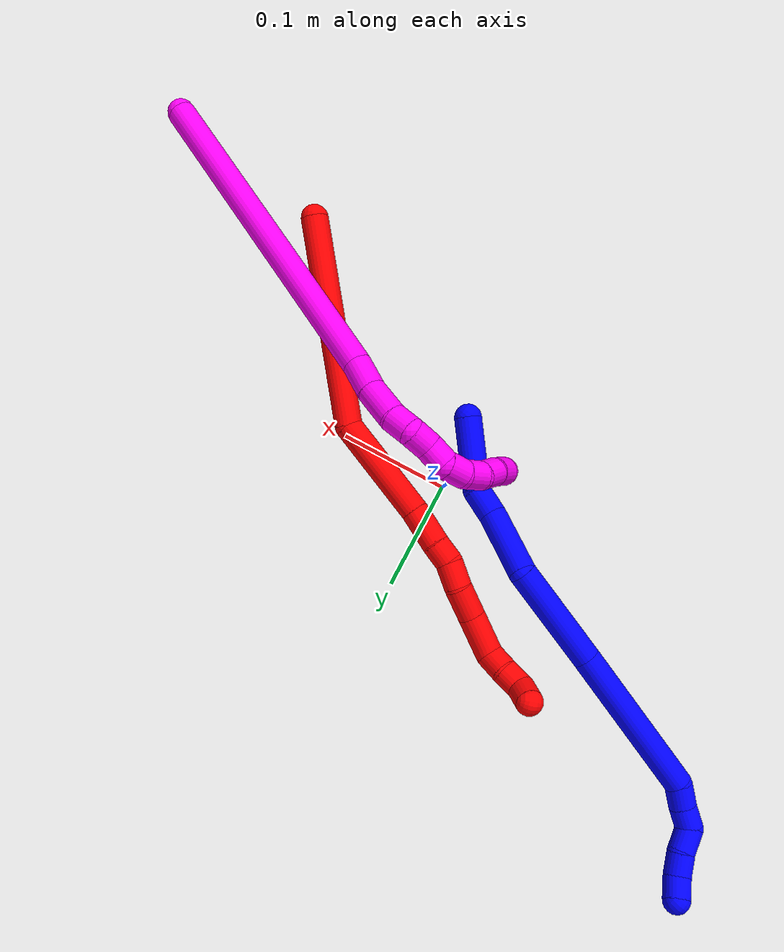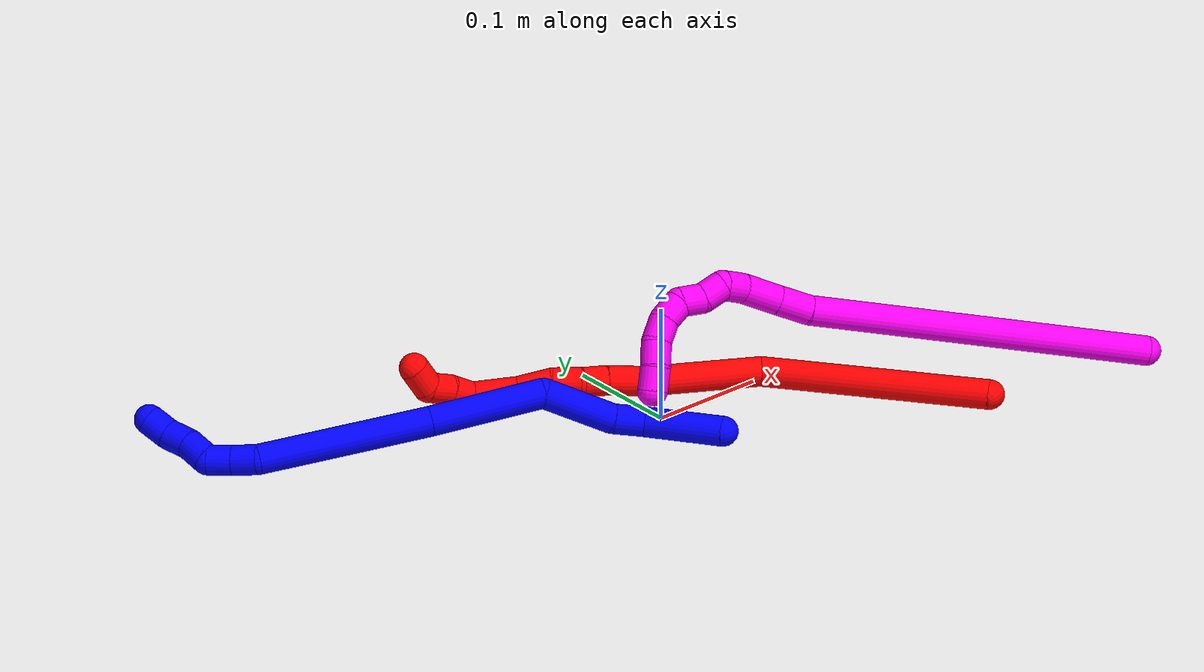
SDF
<sdf version="1.7">
 <world name="default">
  <model name="1">
   <static>0</static>
   <link name="1">
    <collision name="collision-cylinder-e_1_1_4">
     <pose>-0.022532 0.003399 0.024227 -0.139371 -0.744287 0.054476</pose>
     <geometry><cylinder><radius>0.0125</radius><length>0.066519</length></cylinder></geometry>
     <surface>
      <friction><ode><mu>1.16</mu><mu2>1.16</mu2><slip1>0</slip1><slip2>0</slip2></ode></friction>
      <contact><ode><kp>1e+06</kp><kd>1</kd><max_vel>0</max_vel><min_depth>0.001</min_depth></ode></contact>
     </surface>
    </collision>
    <visual name="visual-cylinder-e_1_1_4">
     <pose>-0.022532 0.003399 0.024227 -0.139371 -0.744287 0.054476</pose>
     <geometry><cylinder><radius>0.0125</radius><length>0.066519</length></cylinder></geometry>
     <material><ambient>0 0 1 1</ambient></material>
    </visual>
    <collision name="collision-cylinder-e_2_4_5">
     <pose>-0.048706 0.010806 0.060787 -0.31429 -0.273842 0.043657</pose>
     <geometry><cylinder><radius>0.0125</radius><length>0.026939</length></cylinder></geometry>
     <surface>
      <friction><ode><mu>1.16</mu><mu2>1.16</mu2><slip1>0</slip1><slip2>0</slip2></ode></friction>
      <contact><ode><kp>1e+06</kp><kd>1</kd><max_vel>0</max_vel><min_depth>0.001</min_depth></ode></contact>
     </surface>
    </collision>
    <visual name="visual-cylinder-e_2_4_5">
     <pose>-0.048706 0.010806 0.060787 -0.31429 -0.273842 0.043657</pose>
     <geometry><cylinder><radius>0.0125</radius><length>0.026939</length></cylinder></geometry>
     <material><ambient>0 0 1 1</ambient></material>
    </visual>
    <collision name="collision-cylinder-e_3_5_6">
     <pose>-0.062816 0.03041 0.097484 -0.569361 -0.347205 0.102545</pose>
     <geometry><cylinder><radius>0.0125</radius><length>0.061529</length></cylinder></geometry>
     <surface>
      <friction><ode><mu>1.16</mu><mu2>1.16</mu2><slip1>0</slip1><slip2>0</slip2></ode></friction>
      <contact><ode><kp>1e+06</kp><kd>1</kd><max_vel>0</max_vel><min_depth>0.001</min_depth></ode></contact>
     </surface>
    </collision>
    <visual name="visual-cylinder-e_3_5_6">
     <pose>-0.062816 0.03041 0.097484 -0.569361 -0.347205 0.102545</pose>
     <geometry><cylinder><radius>0.0125</radius><length>0.061529</length></cylinder></geometry>
     <material><ambient>0 0 1 1</ambient></material>
    </visual>
    <collision name="collision-cylinder-e_4_6_7">
     <pose>-0.083694 0.044402 0.168478 0.034365 -0.219523 -0.003788</pose>
     <geometry><cylinder><radius>0.0125</radius><length>0.095607</length></cylinder></geometry>
     <surface>
      <friction><ode><mu>1.16</mu><mu2>1.16</mu2><slip1>0</slip1><slip2>0</slip2></ode></friction>
      <contact><ode><kp>1e+06</kp><kd>1</kd><max_vel>0</max_vel><min_depth>0.001</min_depth></ode></contact>
     </surface>
    </collision>
    <visual name="visual-cylinder-e_4_6_7">
     <pose>-0.083694 0.044402 0.168478 0.034365 -0.219523 -0.003788</pose>
     <geometry><cylinder><radius>0.0125</radius><length>0.095607</length></cylinder></geometry>
     <material><ambient>0 0 1 1</ambient></material>
    </visual>
    <collision name="collision-cylinder-e_5_7_8">
     <pose>-0.110446 0.042126 0.284973 0.009628 -0.229764 -0.001111</pose>
     <geometry><cylinder><radius>0.0125</radius><length>0.14351</length></cylinder></geometry>
     <surface>
      <friction><ode><mu>1.16</mu><mu2>1.16</mu2><slip1>0</slip1><slip2>0</slip2></ode></friction>
      <contact><ode><kp>1e+06</kp><kd>1</kd><max_vel>0</max_vel><min_depth>0.001</min_depth></ode></contact>
     </surface>
    </collision>
    <visual name="visual-cylinder-e_5_7_8">
     <pose>-0.110446 0.042126 0.284973 0.009628 -0.229764 -0.001111</pose>
     <geometry><cylinder><radius>0.0125</radius><length>0.14351</length></cylinder></geometry>
     <material><ambient>0 0 1 1</ambient></material>
    </visual>
    <collision name="collision-cylinder-e_6_8_9">
     <pose>-0.13328 0.041199 0.363332 0.029959 -0.652403 -0.010135</pose>
     <geometry><cylinder><radius>0.0125</radius><length>0.021385</length></cylinder></geometry>
     <surface>
      <friction><ode><mu>1.16</mu><mu2>1.16</mu2><slip1>0</slip1><slip2>0</slip2></ode></friction>
      <contact><ode><kp>1e+06</kp><kd>1</kd><max_vel>0</max_vel><min_depth>0.001</min_depth></ode></contact>
     </surface>
    </collision>
    <visual name="visual-cylinder-e_6_8_9">
     <pose>-0.13328 0.041199 0.363332 0.029959 -0.652403 -0.010135</pose>
     <geometry><cylinder><radius>0.0125</radius><length>0.021385</length></cylinder></geometry>
     <material><ambient>0 0 1 1</ambient></material>
    </visual>
    <collision name="collision-cylinder-e_7_9_10">
     <pose>-0.145247 0.041903 0.380455 -0.110575 -0.562575 0.03198</pose>
     <geometry><cylinder><radius>0.0125</radius><length>0.020531</length></cylinder></geometry>
     <surface>
      <friction><ode><mu>1.16</mu><mu2>1.16</mu2><slip1>0</slip1><slip2>0</slip2></ode></friction>
      <contact><ode><kp>1e+06</kp><kd>1</kd><max_vel>0</max_vel><min_depth>0.001</min_depth></ode></contact>
     </surface>
    </collision>
    <visual name="visual-cylinder-e_7_9_10">
     <pose>-0.145247 0.041903 0.380455 -0.110575 -0.562575 0.03198</pose>
     <geometry><cylinder><radius>0.0125</radius><length>0.020531</length></cylinder></geometry>
     <material><ambient>0 0 1 1</ambient></material>
    </visual>
    <collision name="collision-cylinder-e_8_10_11">
     <pose>-0.161064 0.04676 0.391856 -0.953071 -1.13767 0.637551</pose>
     <geometry><cylinder><radius>0.0125</radius><length>0.022788</length></cylinder></geometry>
     <surface>
      <friction><ode><mu>1.16</mu><mu2>1.16</mu2><slip1>0</slip1><slip2>0</slip2></ode></friction>
      <contact><ode><kp>1e+06</kp><kd>1</kd><max_vel>0</max_vel><min_depth>0.001</min_depth></ode></contact>
     </surface>
    </collision>
    <visual name="visual-cylinder-e_8_10_11">
     <pose>-0.161064 0.04676 0.391856 -0.953071 -1.13767 0.637551</pose>
     <geometry><cylinder><radius>0.0125</radius><length>0.022788</length></cylinder></geometry>
     <material><ambient>0 0 1 1</ambient></material>
    </visual>
    <collision name="collision-cylinder-e_9_11_12">
     <pose>-0.180379 0.053143 0.399441 -0.476351 -1.02752 0.272314</pose>
     <geometry><cylinder><radius>0.0125</radius><length>0.020966</length></cylinder></geometry>
     <surface>
      <friction><ode><mu>1.16</mu><mu2>1.16</mu2><slip1>0</slip1><slip2>0</slip2></ode></friction>
      <contact><ode><kp>1e+06</kp><kd>1</kd><max_vel>0</max_vel><min_depth>0.001</min_depth></ode></contact>
     </surface>
    </collision>
    <visual name="visual-cylinder-e_9_11_12">
     <pose>-0.180379 0.053143 0.399441 -0.476351 -1.02752 0.272314</pose>
     <geometry><cylinder><radius>0.0125</radius><length>0.020966</length></cylinder></geometry>
     <material><ambient>0 0 1 1</ambient></material>
    </visual>
    <collision name="collision-cylinder-e_10_12_2">
     <pose>-0.196802 0.060856 0.408668 -0.86999 -0.827952 0.402795</pose>
     <geometry><cylinder><radius>0.0125</radius><length>0.020226</length></cylinder></geometry>
     <surface>
      <friction><ode><mu>1.16</mu><mu2>1.16</mu2><slip1>0</slip1><slip2>0</slip2></ode></friction>
      <contact><ode><kp>1e+06</kp><kd>1</kd><max_vel>0</max_vel><min_depth>0.001</min_depth></ode></contact>
     </surface>
    </collision>
    <visual name="visual-cylinder-e_10_12_2">
     <pose>-0.196802 0.060856 0.408668 -0.86999 -0.827952 0.402795</pose>
     <geometry><cylinder><radius>0.0125</radius><length>0.020226</length></cylinder></geometry>
     <material><ambient>0 0 1 1</ambient></material>
    </visual>
    <collision name="collision-sphere-2">
     <pose>-0.204251 0.066084 0.413079 0 -0 0</pose>
     <geometry><sphere><radius>0.0125</radius></sphere></geometry>
     <surface>
      <friction><ode><mu>1.16</mu><mu2>1.16</mu2><slip1>0</slip1><slip2>0</slip2></ode></friction>
      <contact><ode><kp>1e+06</kp><kd>1</kd><max_vel>0</max_vel><min_depth>0.001</min_depth></ode></contact>
     </surface>
    </collision>
    <visual name="visual-sphere-2">
     <pose>-0.204251 0.066084 0.413079 0 -0 0</pose>
     <geometry><sphere><radius>0.0125</radius></sphere></geometry>
     <material><ambient>0 0 1 1</ambient></material>
    </visual>
    <collision name="collision-sphere-12">
     <pose>-0.189353 0.055628 0.404257 0 -0 0</pose>
     <geometry><sphere><radius>0.0125</radius></sphere></geometry>
     <surface>
      <friction><ode><mu>1.16</mu><mu2>1.16</mu2><slip1>0</slip1><slip2>0</slip2></ode></friction>
      <contact><ode><kp>1e+06</kp><kd>1</kd><max_vel>0</max_vel><min_depth>0.001</min_depth></ode></contact>
     </surface>
    </collision>
    <visual name="visual-sphere-12">
     <pose>-0.189353 0.055628 0.404257 0 -0 0</pose>
     <geometry><sphere><radius>0.0125</radius></sphere></geometry>
     <material><ambient>0 0 1 1</ambient></material>
    </visual>
    <collision name="collision-sphere-11">
     <pose>-0.171406 0.050658 0.394625 0 -0 0</pose>
     <geometry><sphere><radius>0.0125</radius></sphere></geometry>
     <surface>
      <friction><ode><mu>1.16</mu><mu2>1.16</mu2><slip1>0</slip1><slip2>0</slip2></ode></friction>
      <contact><ode><kp>1e+06</kp><kd>1</kd><max_vel>0</max_vel><min_depth>0.001</min_depth></ode></contact>
     </surface>
    </collision>
    <visual name="visual-sphere-11">
     <pose>-0.171406 0.050658 0.394625 0 -0 0</pose>
     <geometry><sphere><radius>0.0125</radius></sphere></geometry>
     <material><ambient>0 0 1 1</ambient></material>
    </visual>
    <collision name="collision-sphere-10">
     <pose>-0.150722 0.042861 0.389086 0 -0 0</pose>
     <geometry><sphere><radius>0.0125</radius></sphere></geometry>
     <surface>
      <friction><ode><mu>1.16</mu><mu2>1.16</mu2><slip1>0</slip1><slip2>0</slip2></ode></friction>
      <contact><ode><kp>1e+06</kp><kd>1</kd><max_vel>0</max_vel><min_depth>0.001</min_depth></ode></contact>
     </surface>
    </collision>
    <visual name="visual-sphere-10">
     <pose>-0.150722 0.042861 0.389086 0 -0 0</pose>
     <geometry><sphere><radius>0.0125</radius></sphere></geometry>
     <material><ambient>0 0 1 1</ambient></material>
    </visual>
    <collision name="collision-sphere-9">
     <pose>-0.139771 0.040945 0.371825 0 -0 0</pose>
     <geometry><sphere><radius>0.0125</radius></sphere></geometry>
     <surface>
      <friction><ode><mu>1.16</mu><mu2>1.16</mu2><slip1>0</slip1><slip2>0</slip2></ode></friction>
      <contact><ode><kp>1e+06</kp><kd>1</kd><max_vel>0</max_vel><min_depth>0.001</min_depth></ode></contact>
     </surface>
    </collision>
    <visual name="visual-sphere-9">
     <pose>-0.139771 0.040945 0.371825 0 -0 0</pose>
     <geometry><sphere><radius>0.0125</radius></sphere></geometry>
     <material><ambient>0 0 1 1</ambient></material>
    </visual>
    <collision name="collision-sphere-4">
     <pose>-0.045063 0.006797 0.048455 0 -0 0</pose>
     <geometry><sphere><radius>0.0125</radius></sphere></geometry>
     <surface>
      <friction><ode><mu>1.16</mu><mu2>1.16</mu2><slip1>0</slip1><slip2>0</slip2></ode></friction>
      <contact><ode><kp>1e+06</kp><kd>1</kd><max_vel>0</max_vel><min_depth>0.001</min_depth></ode></contact>
     </surface>
    </collision>
    <visual name="visual-sphere-4">
     <pose>-0.045063 0.006797 0.048455 0 -0 0</pose>
     <geometry><sphere><radius>0.0125</radius></sphere></geometry>
     <material><ambient>0 0 1 1</ambient></material>
    </visual>
    <collision name="collision-sphere-1">
     <geometry><sphere><radius>0.0125</radius></sphere></geometry>
     <surface>
      <friction><ode><mu>1.16</mu><mu2>1.16</mu2><slip1>0</slip1><slip2>0</slip2></ode></friction>
      <contact><ode><kp>1e+06</kp><kd>1</kd><max_vel>0</max_vel><min_depth>0.001</min_depth></ode></contact>
     </surface>
    </collision>
    <visual name="visual-sphere-1">
     <geometry><sphere><radius>0.0125</radius></sphere></geometry>
     <material><ambient>0 0 1 1</ambient></material>
    </visual>
    <collision name="collision-sphere-8">
     <pose>-0.126789 0.041454 0.354839 0 -0 0</pose>
     <geometry><sphere><radius>0.0125</radius></sphere></geometry>
     <surface>
      <friction><ode><mu>1.16</mu><mu2>1.16</mu2><slip1>0</slip1><slip2>0</slip2></ode></friction>
      <contact><ode><kp>1e+06</kp><kd>1</kd><max_vel>0</max_vel><min_depth>0.001</min_depth></ode></contact>
     </surface>
    </collision>
    <visual name="visual-sphere-8">
     <pose>-0.126789 0.041454 0.354839 0 -0 0</pose>
     <geometry><sphere><radius>0.0125</radius></sphere></geometry>
     <material><ambient>0 0 1 1</ambient></material>
    </visual>
    <collision name="collision-sphere-5">
     <pose>-0.052348 0.014815 0.073119 0 -0 0</pose>
     <geometry><sphere><radius>0.0125</radius></sphere></geometry>
     <surface>
      <friction><ode><mu>1.16</mu><mu2>1.16</mu2><slip1>0</slip1><slip2>0</slip2></ode></friction>
      <contact><ode><kp>1e+06</kp><kd>1</kd><max_vel>0</max_vel><min_depth>0.001</min_depth></ode></contact>
     </surface>
    </collision>
    <visual name="visual-sphere-5">
     <pose>-0.052348 0.014815 0.073119 0 -0 0</pose>
     <geometry><sphere><radius>0.0125</radius></sphere></geometry>
     <material><ambient>0 0 1 1</ambient></material>
    </visual>
    <collision name="collision-sphere-6">
     <pose>-0.073285 0.046005 0.121849 0 -0 0</pose>
     <geometry><sphere><radius>0.0125</radius></sphere></geometry>
     <surface>
      <friction><ode><mu>1.16</mu><mu2>1.16</mu2><slip1>0</slip1><slip2>0</slip2></ode></friction>
      <contact><ode><kp>1e+06</kp><kd>1</kd><max_vel>0</max_vel><min_depth>0.001</min_depth></ode></contact>
     </surface>
    </collision>
    <visual name="visual-sphere-6">
     <pose>-0.073285 0.046005 0.121849 0 -0 0</pose>
     <geometry><sphere><radius>0.0125</radius></sphere></geometry>
     <material><ambient>0 0 1 1</ambient></material>
    </visual>
    <collision name="collision-sphere-7">
     <pose>-0.094104 0.042799 0.215107 0 -0 0</pose>
     <geometry><sphere><radius>0.0125</radius></sphere></geometry>
     <surface>
      <friction><ode><mu>1.16</mu><mu2>1.16</mu2><slip1>0</slip1><slip2>0</slip2></ode></friction>
      <contact><ode><kp>1e+06</kp><kd>1</kd><max_vel>0</max_vel><min_depth>0.001</min_depth></ode></contact>
     </surface>
    </collision>
    <visual name="visual-sphere-7">
     <pose>-0.094104 0.042799 0.215107 0 -0 0</pose>
     <geometry><sphere><radius>0.0125</radius></sphere></geometry>
     <material><ambient>0 0 1 1</ambient></material>
    </visual>
    <inertial>
     <pose>-0.095586 0.035662 0.214805 0 -0 0</pose>
     <mass>0.5</mass>
     <inertia>
      <ixx>0.000356</ixx>
      <ixy>0</ixy>
      <ixz>0</ixz>
      <iyy>0.000393</iyy>
      <iyz>0</iyz>
      <izz>0.000127</izz>
     </inertia>
    </inertial>
   </link>
   <pose>0.009565 -0.066431 0.01174 1.6538 -0.066859 -1.79056</pose>
  </model>
  <model name="2">
   <static>0</static>
   <link name="2">
    <collision name="collision-cylinder-e_1_1_4">
     <pose>-0.066213 0.060562 -0.033676 -2.07828 -0.762656 1.19671</pose>
     <geometry><cylinder><radius>0.0125</radius><length>0.191686</length></cylinder></geometry>
     <surface>
      <friction><ode><mu>1.16</mu><mu2>1.16</mu2><slip1>0</slip1><slip2>0</slip2></ode></friction>
      <contact><ode><kp>1e+06</kp><kd>1</kd><max_vel>0</max_vel><min_depth>0.001</min_depth></ode></contact>
     </surface>
    </collision>
    <visual name="visual-cylinder-e_1_1_4">
     <pose>-0.066213 0.060562 -0.033676 -2.07828 -0.762656 1.19671</pose>
     <geometry><cylinder><radius>0.0125</radius><length>0.191686</length></cylinder></geometry>
     <material><ambient>1 0 0 1</ambient></material>
    </visual>
    <collision name="collision-cylinder-e_2_4_5">
     <pose>-0.161214 0.137247 -0.103019 -2.71704 -0.634151 1.97933</pose>
     <geometry><cylinder><radius>0.0125</radius><length>0.097178</length></cylinder></geometry>
     <surface>
      <friction><ode><mu>1.16</mu><mu2>1.16</mu2><slip1>0</slip1><slip2>0</slip2></ode></friction>
      <contact><ode><kp>1e+06</kp><kd>1</kd><max_vel>0</max_vel><min_depth>0.001</min_depth></ode></contact>
     </surface>
    </collision>
    <visual name="visual-cylinder-e_2_4_5">
     <pose>-0.161214 0.137247 -0.103019 -2.71704 -0.634151 1.97933</pose>
     <geometry><cylinder><radius>0.0125</radius><length>0.097178</length></cylinder></geometry>
     <material><ambient>1 0 0 1</ambient></material>
    </visual>
    <collision name="collision-cylinder-e_3_5_6">
     <pose>-0.201844 0.15947 -0.150136 -2.65205 -0.739817 1.99708</pose>
     <geometry><cylinder><radius>0.0125</radius><length>0.035129</length></cylinder></geometry>
     <surface>
      <friction><ode><mu>1.16</mu><mu2>1.16</mu2><slip1>0</slip1><slip2>0</slip2></ode></friction>
      <contact><ode><kp>1e+06</kp><kd>1</kd><max_vel>0</max_vel><min_depth>0.001</min_depth></ode></contact>
     </surface>
    </collision>
    <visual name="visual-cylinder-e_3_5_6">
     <pose>-0.201844 0.15947 -0.150136 -2.65205 -0.739817 1.99708</pose>
     <geometry><cylinder><radius>0.0125</radius><length>0.035129</length></cylinder></geometry>
     <material><ambient>1 0 0 1</ambient></material>
    </visual>
    <collision name="collision-cylinder-e_4_6_7">
     <pose>-0.219681 0.169165 -0.168846 -2.68191 -0.637073 1.90741</pose>
     <geometry><cylinder><radius>0.0125</radius><length>0.020158</length></cylinder></geometry>
     <surface>
      <friction><ode><mu>1.16</mu><mu2>1.16</mu2><slip1>0</slip1><slip2>0</slip2></ode></friction>
      <contact><ode><kp>1e+06</kp><kd>1</kd><max_vel>0</max_vel><min_depth>0.001</min_depth></ode></contact>
     </surface>
    </collision>
    <visual name="visual-cylinder-e_4_6_7">
     <pose>-0.219681 0.169165 -0.168846 -2.68191 -0.637073 1.90741</pose>
     <geometry><cylinder><radius>0.0125</radius><length>0.020158</length></cylinder></geometry>
     <material><ambient>1 0 0 1</ambient></material>
    </visual>
    <collision name="collision-cylinder-e_5_7_8">
     <pose>-0.233416 0.179521 -0.182316 -2.31364 -0.700485 1.38722</pose>
     <geometry><cylinder><radius>0.0125</radius><length>0.024015</length></cylinder></geometry>
     <surface>
      <friction><ode><mu>1.16</mu><mu2>1.16</mu2><slip1>0</slip1><slip2>0</slip2></ode></friction>
      <contact><ode><kp>1e+06</kp><kd>1</kd><max_vel>0</max_vel><min_depth>0.001</min_depth></ode></contact>
     </surface>
    </collision>
    <visual name="visual-cylinder-e_5_7_8">
     <pose>-0.233416 0.179521 -0.182316 -2.31364 -0.700485 1.38722</pose>
     <geometry><cylinder><radius>0.0125</radius><length>0.024015</length></cylinder></geometry>
     <material><ambient>1 0 0 1</ambient></material>
    </visual>
    <collision name="collision-cylinder-e_6_8_9">
     <pose>-0.247672 0.195746 -0.19762 -2.33631 -0.460828 1.00688</pose>
     <geometry><cylinder><radius>0.0125</radius><length>0.029309</length></cylinder></geometry>
     <surface>
      <friction><ode><mu>1.16</mu><mu2>1.16</mu2><slip1>0</slip1><slip2>0</slip2></ode></friction>
      <contact><ode><kp>1e+06</kp><kd>1</kd><max_vel>0</max_vel><min_depth>0.001</min_depth></ode></contact>
     </surface>
    </collision>
    <visual name="visual-cylinder-e_6_8_9">
     <pose>-0.247672 0.195746 -0.19762 -2.33631 -0.460828 1.00688</pose>
     <geometry><cylinder><radius>0.0125</radius><length>0.029309</length></cylinder></geometry>
     <material><ambient>1 0 0 1</ambient></material>
    </visual>
    <collision name="collision-cylinder-e_7_9_10">
     <pose>-0.265125 0.216333 -0.218532 -2.38645 -0.592982 1.31272</pose>
     <geometry><cylinder><radius>0.0125</radius><length>0.039137</length></cylinder></geometry>
     <surface>
      <friction><ode><mu>1.16</mu><mu2>1.16</mu2><slip1>0</slip1><slip2>0</slip2></ode></friction>
      <contact><ode><kp>1e+06</kp><kd>1</kd><max_vel>0</max_vel><min_depth>0.001</min_depth></ode></contact>
     </surface>
    </collision>
    <visual name="visual-cylinder-e_7_9_10">
     <pose>-0.265125 0.216333 -0.218532 -2.38645 -0.592982 1.31272</pose>
     <geometry><cylinder><radius>0.0125</radius><length>0.039137</length></cylinder></geometry>
     <material><ambient>1 0 0 1</ambient></material>
    </visual>
    <collision name="collision-cylinder-e_8_10_11">
     <pose>-0.284484 0.226852 -0.236664 3.04636 -0.925274 -2.95107</pose>
     <geometry><cylinder><radius>0.0125</radius><length>0.02109</length></cylinder></geometry>
     <surface>
      <friction><ode><mu>1.16</mu><mu2>1.16</mu2><slip1>0</slip1><slip2>0</slip2></ode></friction>
      <contact><ode><kp>1e+06</kp><kd>1</kd><max_vel>0</max_vel><min_depth>0.001</min_depth></ode></contact>
     </surface>
    </collision>
    <visual name="visual-cylinder-e_8_10_11">
     <pose>-0.284484 0.226852 -0.236664 3.04636 -0.925274 -2.95107</pose>
     <geometry><cylinder><radius>0.0125</radius><length>0.02109</length></cylinder></geometry>
     <material><ambient>1 0 0 1</ambient></material>
    </visual>
    <collision name="collision-cylinder-e_9_11_12">
     <pose>-0.299785 0.226939 -0.250358 -3.0483 -0.748087 2.90486</pose>
     <geometry><cylinder><radius>0.0125</radius><length>0.020222</length></cylinder></geometry>
     <surface>
      <friction><ode><mu>1.16</mu><mu2>1.16</mu2><slip1>0</slip1><slip2>0</slip2></ode></friction>
      <contact><ode><kp>1e+06</kp><kd>1</kd><max_vel>0</max_vel><min_depth>0.001</min_depth></ode></contact>
     </surface>
    </collision>
    <visual name="visual-cylinder-e_9_11_12">
     <pose>-0.299785 0.226939 -0.250358 -3.0483 -0.748087 2.90486</pose>
     <geometry><cylinder><radius>0.0125</radius><length>0.020222</length></cylinder></geometry>
     <material><ambient>1 0 0 1</ambient></material>
    </visual>
    <collision name="collision-cylinder-e_10_12_2">
     <pose>-0.316924 0.223956 -0.259483 2.01439 -1.19345 -1.64301</pose>
     <geometry><cylinder><radius>0.0125</radius><length>0.022075</length></cylinder></geometry>
     <surface>
      <friction><ode><mu>1.16</mu><mu2>1.16</mu2><slip1>0</slip1><slip2>0</slip2></ode></friction>
      <contact><ode><kp>1e+06</kp><kd>1</kd><max_vel>0</max_vel><min_depth>0.001</min_depth></ode></contact>
     </surface>
    </collision>
    <visual name="visual-cylinder-e_10_12_2">
     <pose>-0.316924 0.223956 -0.259483 2.01439 -1.19345 -1.64301</pose>
     <geometry><cylinder><radius>0.0125</radius><length>0.022075</length></cylinder></geometry>
     <material><ambient>1 0 0 1</ambient></material>
    </visual>
    <collision name="collision-sphere-2">
     <pose>-0.327185 0.220283 -0.261228 0 -0 0</pose>
     <geometry><sphere><radius>0.0125</radius></sphere></geometry>
     <surface>
      <friction><ode><mu>1.16</mu><mu2>1.16</mu2><slip1>0</slip1><slip2>0</slip2></ode></friction>
      <contact><ode><kp>1e+06</kp><kd>1</kd><max_vel>0</max_vel><min_depth>0.001</min_depth></ode></contact>
     </surface>
    </collision>
    <visual name="visual-sphere-2">
     <pose>-0.327185 0.220283 -0.261228 0 -0 0</pose>
     <geometry><sphere><radius>0.0125</radius></sphere></geometry>
     <material><ambient>1 0 0 1</ambient></material>
    </visual>
    <collision name="collision-sphere-12">
     <pose>-0.306663 0.227629 -0.257737 0 -0 0</pose>
     <geometry><sphere><radius>0.0125</radius></sphere></geometry>
     <surface>
      <friction><ode><mu>1.16</mu><mu2>1.16</mu2><slip1>0</slip1><slip2>0</slip2></ode></friction>
      <contact><ode><kp>1e+06</kp><kd>1</kd><max_vel>0</max_vel><min_depth>0.001</min_depth></ode></contact>
     </surface>
    </collision>
    <visual name="visual-sphere-12">
     <pose>-0.306663 0.227629 -0.257737 0 -0 0</pose>
     <geometry><sphere><radius>0.0125</radius></sphere></geometry>
     <material><ambient>1 0 0 1</ambient></material>
    </visual>
    <collision name="collision-sphere-11">
     <pose>-0.292907 0.226249 -0.242979 0 -0 0</pose>
     <geometry><sphere><radius>0.0125</radius></sphere></geometry>
     <surface>
      <friction><ode><mu>1.16</mu><mu2>1.16</mu2><slip1>0</slip1><slip2>0</slip2></ode></friction>
      <contact><ode><kp>1e+06</kp><kd>1</kd><max_vel>0</max_vel><min_depth>0.001</min_depth></ode></contact>
     </surface>
    </collision>
    <visual name="visual-sphere-11">
     <pose>-0.292907 0.226249 -0.242979 0 -0 0</pose>
     <geometry><sphere><radius>0.0125</radius></sphere></geometry>
     <material><ambient>1 0 0 1</ambient></material>
    </visual>
    <collision name="collision-sphere-10">
     <pose>-0.27606 0.227455 -0.230348 0 -0 0</pose>
     <geometry><sphere><radius>0.0125</radius></sphere></geometry>
     <surface>
      <friction><ode><mu>1.16</mu><mu2>1.16</mu2><slip1>0</slip1><slip2>0</slip2></ode></friction>
      <contact><ode><kp>1e+06</kp><kd>1</kd><max_vel>0</max_vel><min_depth>0.001</min_depth></ode></contact>
     </surface>
    </collision>
    <visual name="visual-sphere-10">
     <pose>-0.27606 0.227455 -0.230348 0 -0 0</pose>
     <geometry><sphere><radius>0.0125</radius></sphere></geometry>
     <material><ambient>1 0 0 1</ambient></material>
    </visual>
    <collision name="collision-sphere-9">
     <pose>-0.254189 0.20521 -0.206715 0 -0 0</pose>
     <geometry><sphere><radius>0.0125</radius></sphere></geometry>
     <surface>
      <friction><ode><mu>1.16</mu><mu2>1.16</mu2><slip1>0</slip1><slip2>0</slip2></ode></friction>
      <contact><ode><kp>1e+06</kp><kd>1</kd><max_vel>0</max_vel><min_depth>0.001</min_depth></ode></contact>
     </surface>
    </collision>
    <visual name="visual-sphere-9">
     <pose>-0.254189 0.20521 -0.206715 0 -0 0</pose>
     <geometry><sphere><radius>0.0125</radius></sphere></geometry>
     <material><ambient>1 0 0 1</ambient></material>
    </visual>
    <collision name="collision-sphere-4">
     <pose>-0.132425 0.121124 -0.067352 0 -0 0</pose>
     <geometry><sphere><radius>0.0125</radius></sphere></geometry>
     <surface>
      <friction><ode><mu>1.16</mu><mu2>1.16</mu2><slip1>0</slip1><slip2>0</slip2></ode></friction>
      <contact><ode><kp>1e+06</kp><kd>1</kd><max_vel>0</max_vel><min_depth>0.001</min_depth></ode></contact>
     </surface>
    </collision>
    <visual name="visual-sphere-4">
     <pose>-0.132425 0.121124 -0.067352 0 -0 0</pose>
     <geometry><sphere><radius>0.0125</radius></sphere></geometry>
     <material><ambient>1 0 0 1</ambient></material>
    </visual>
    <collision name="collision-sphere-1">
     <geometry><sphere><radius>0.0125</radius></sphere></geometry>
     <surface>
      <friction><ode><mu>1.16</mu><mu2>1.16</mu2><slip1>0</slip1><slip2>0</slip2></ode></friction>
      <contact><ode><kp>1e+06</kp><kd>1</kd><max_vel>0</max_vel><min_depth>0.001</min_depth></ode></contact>
     </surface>
    </collision>
    <visual name="visual-sphere-1">
     <geometry><sphere><radius>0.0125</radius></sphere></geometry>
     <material><ambient>1 0 0 1</ambient></material>
    </visual>
    <collision name="collision-sphere-8">
     <pose>-0.241156 0.186282 -0.188525 0 -0 0</pose>
     <geometry><sphere><radius>0.0125</radius></sphere></geometry>
     <surface>
      <friction><ode><mu>1.16</mu><mu2>1.16</mu2><slip1>0</slip1><slip2>0</slip2></ode></friction>
      <contact><ode><kp>1e+06</kp><kd>1</kd><max_vel>0</max_vel><min_depth>0.001</min_depth></ode></contact>
     </surface>
    </collision>
    <visual name="visual-sphere-8">
     <pose>-0.241156 0.186282 -0.188525 0 -0 0</pose>
     <geometry><sphere><radius>0.0125</radius></sphere></geometry>
     <material><ambient>1 0 0 1</ambient></material>
    </visual>
    <collision name="collision-sphere-5">
     <pose>-0.190003 0.15337 -0.138686 0 -0 0</pose>
     <geometry><sphere><radius>0.0125</radius></sphere></geometry>
     <surface>
      <friction><ode><mu>1.16</mu><mu2>1.16</mu2><slip1>0</slip1><slip2>0</slip2></ode></friction>
      <contact><ode><kp>1e+06</kp><kd>1</kd><max_vel>0</max_vel><min_depth>0.001</min_depth></ode></contact>
     </surface>
    </collision>
    <visual name="visual-sphere-5">
     <pose>-0.190003 0.15337 -0.138686 0 -0 0</pose>
     <geometry><sphere><radius>0.0125</radius></sphere></geometry>
     <material><ambient>1 0 0 1</ambient></material>
    </visual>
    <collision name="collision-sphere-6">
     <pose>-0.213685 0.16557 -0.161585 0 -0 0</pose>
     <geometry><sphere><radius>0.0125</radius></sphere></geometry>
     <surface>
      <friction><ode><mu>1.16</mu><mu2>1.16</mu2><slip1>0</slip1><slip2>0</slip2></ode></friction>
      <contact><ode><kp>1e+06</kp><kd>1</kd><max_vel>0</max_vel><min_depth>0.001</min_depth></ode></contact>
     </surface>
    </collision>
    <visual name="visual-sphere-6">
     <pose>-0.213685 0.16557 -0.161585 0 -0 0</pose>
     <geometry><sphere><radius>0.0125</radius></sphere></geometry>
     <material><ambient>1 0 0 1</ambient></material>
    </visual>
    <collision name="collision-sphere-7">
     <pose>-0.225676 0.172759 -0.176107 0 -0 0</pose>
     <geometry><sphere><radius>0.0125</radius></sphere></geometry>
     <surface>
      <friction><ode><mu>1.16</mu><mu2>1.16</mu2><slip1>0</slip1><slip2>0</slip2></ode></friction>
      <contact><ode><kp>1e+06</kp><kd>1</kd><max_vel>0</max_vel><min_depth>0.001</min_depth></ode></contact>
     </surface>
    </collision>
    <visual name="visual-sphere-7">
     <pose>-0.225676 0.172759 -0.176107 0 -0 0</pose>
     <geometry><sphere><radius>0.0125</radius></sphere></geometry>
     <material><ambient>1 0 0 1</ambient></material>
    </visual>
    <inertial>
     <pose>-0.164353 0.133581 -0.119299 0 -0 0</pose>
     <mass>0.5</mass>
     <inertia>
      <ixx>0.000578</ixx>
      <ixy>0</ixy>
      <ixz>0</ixz>
      <iyy>0.000776</iyy>
      <iyz>0</iyz>
      <izz>4.1e-05</izz>
     </inertia>
    </inertial>
   </link>
   <pose>0.217287 -0.160931 0.012265 -1.27794 0.797908 -1.07318</pose>
  </model>
  <model name="10">
   <static>0</static>
   <link name="10">
    <collision name="collision-cylinder-e_1_1_4">
     <pose>-0.086492 0.040787 -0.114011 -2.79803 -0.620256 2.14921</pose>
     <geometry><cylinder><radius>0.0125</radius><length>0.29761</length></cylinder></geometry>
     <surface>
      <friction><ode><mu>1.16</mu><mu2>1.16</mu2><slip1>0</slip1><slip2>0</slip2></ode></friction>
      <contact><ode><kp>1e+06</kp><kd>1</kd><max_vel>0</max_vel><min_depth>0.001</min_depth></ode></contact>
     </surface>
    </collision>
    <visual name="visual-cylinder-e_1_1_4">
     <pose>-0.086492 0.040787 -0.114011 -2.79803 -0.620256 2.14921</pose>
     <geometry><cylinder><radius>0.0125</radius><length>0.29761</length></cylinder></geometry>
     <material><ambient>1 0 0.964706 1</ambient></material>
    </visual>
    <collision name="collision-cylinder-e_2_4_5">
     <pose>-0.179796 0.087657 -0.239308 -2.64729 -0.488413 1.55832</pose>
     <geometry><cylinder><radius>0.0125</radius><length>0.029037</length></cylinder></geometry>
     <surface>
      <friction><ode><mu>1.16</mu><mu2>1.16</mu2><slip1>0</slip1><slip2>0</slip2></ode></friction>
      <contact><ode><kp>1e+06</kp><kd>1</kd><max_vel>0</max_vel><min_depth>0.001</min_depth></ode></contact>
     </surface>
    </collision>
    <visual name="visual-cylinder-e_2_4_5">
     <pose>-0.179796 0.087657 -0.239308 -2.64729 -0.488413 1.55832</pose>
     <geometry><cylinder><radius>0.0125</radius><length>0.029037</length></cylinder></geometry>
     <material><ambient>1 0 0.964706 1</ambient></material>
    </visual>
    <collision name="collision-cylinder-e_3_5_6">
     <pose>-0.196 0.101675 -0.261573 -2.51573 -0.606197 1.53677</pose>
     <geometry><cylinder><radius>0.0125</radius><length>0.032967</length></cylinder></geometry>
     <surface>
      <friction><ode><mu>1.16</mu><mu2>1.16</mu2><slip1>0</slip1><slip2>0</slip2></ode></friction>
      <contact><ode><kp>1e+06</kp><kd>1</kd><max_vel>0</max_vel><min_depth>0.001</min_depth></ode></contact>
     </surface>
    </collision>
    <visual name="visual-cylinder-e_3_5_6">
     <pose>-0.196 0.101675 -0.261573 -2.51573 -0.606197 1.53677</pose>
     <geometry><cylinder><radius>0.0125</radius><length>0.032967</length></cylinder></geometry>
     <material><ambient>1 0 0.964706 1</ambient></material>
    </visual>
    <collision name="collision-cylinder-e_4_6_7">
     <pose>-0.212883 0.113595 -0.278066 -2.51582 -0.833523 1.87942</pose>
     <geometry><cylinder><radius>0.0125</radius><length>0.020238</length></cylinder></geometry>
     <surface>
      <friction><ode><mu>1.16</mu><mu2>1.16</mu2><slip1>0</slip1><slip2>0</slip2></ode></friction>
      <contact><ode><kp>1e+06</kp><kd>1</kd><max_vel>0</max_vel><min_depth>0.001</min_depth></ode></contact>
     </surface>
    </collision>
    <visual name="visual-cylinder-e_4_6_7">
     <pose>-0.212883 0.113595 -0.278066 -2.51582 -0.833523 1.87942</pose>
     <geometry><cylinder><radius>0.0125</radius><length>0.020238</length></cylinder></geometry>
     <material><ambient>1 0 0.964706 1</ambient></material>
    </visual>
    <collision name="collision-cylinder-e_5_7_8">
     <pose>-0.227931 0.114255 -0.289231 2.60986 -0.856166 -2.0655</pose>
     <geometry><cylinder><radius>0.0125</radius><length>0.020009</length></cylinder></geometry>
     <surface>
      <friction><ode><mu>1.16</mu><mu2>1.16</mu2><slip1>0</slip1><slip2>0</slip2></ode></friction>
      <contact><ode><kp>1e+06</kp><kd>1</kd><max_vel>0</max_vel><min_depth>0.001</min_depth></ode></contact>
     </surface>
    </collision>
    <visual name="visual-cylinder-e_5_7_8">
     <pose>-0.227931 0.114255 -0.289231 2.60986 -0.856166 -2.0655</pose>
     <geometry><cylinder><radius>0.0125</radius><length>0.020009</length></cylinder></geometry>
     <material><ambient>1 0 0.964706 1</ambient></material>
    </visual>
    <collision name="collision-cylinder-e_6_8_9">
     <pose>-0.242644 0.111382 -0.301948 -3.07782 -0.790771 2.98903</pose>
     <geometry><cylinder><radius>0.0125</radius><length>0.020136</length></cylinder></geometry>
     <surface>
      <friction><ode><mu>1.16</mu><mu2>1.16</mu2><slip1>0</slip1><slip2>0</slip2></ode></friction>
      <contact><ode><kp>1e+06</kp><kd>1</kd><max_vel>0</max_vel><min_depth>0.001</min_depth></ode></contact>
     </surface>
    </collision>
    <visual name="visual-cylinder-e_6_8_9">
     <pose>-0.242644 0.111382 -0.301948 -3.07782 -0.790771 2.98903</pose>
     <geometry><cylinder><radius>0.0125</radius><length>0.020136</length></cylinder></geometry>
     <material><ambient>1 0 0.964706 1</ambient></material>
    </visual>
    <collision name="collision-cylinder-e_7_9_10">
     <pose>-0.257884 0.106982 -0.312353 2.17357 -0.941074 -1.53778</pose>
     <geometry><cylinder><radius>0.0125</radius><length>0.02</length></cylinder></geometry>
     <surface>
      <friction><ode><mu>1.16</mu><mu2>1.16</mu2><slip1>0</slip1><slip2>0</slip2></ode></friction>
      <contact><ode><kp>1e+06</kp><kd>1</kd><max_vel>0</max_vel><min_depth>0.001</min_depth></ode></contact>
     </surface>
    </collision>
    <visual name="visual-cylinder-e_7_9_10">
     <pose>-0.257884 0.106982 -0.312353 2.17357 -0.941074 -1.53778</pose>
     <geometry><cylinder><radius>0.0125</radius><length>0.02</length></cylinder></geometry>
     <material><ambient>1 0 0.964706 1</ambient></material>
    </visual>
    <collision name="collision-cylinder-e_8_10_11">
     <pose>-0.273671 0.095759 -0.315901 1.60361 -0.879579 -0.905126</pose>
     <geometry><cylinder><radius>0.0125</radius><length>0.020002</length></cylinder></geometry>
     <surface>
      <friction><ode><mu>1.16</mu><mu2>1.16</mu2><slip1>0</slip1><slip2>0</slip2></ode></friction>
      <contact><ode><kp>1e+06</kp><kd>1</kd><max_vel>0</max_vel><min_depth>0.001</min_depth></ode></contact>
     </surface>
    </collision>
    <visual name="visual-cylinder-e_8_10_11">
     <pose>-0.273671 0.095759 -0.315901 1.60361 -0.879579 -0.905126</pose>
     <geometry><cylinder><radius>0.0125</radius><length>0.020002</length></cylinder></geometry>
     <material><ambient>1 0 0.964706 1</ambient></material>
    </visual>
    <collision name="collision-cylinder-e_9_11_12">
     <pose>-0.287434 0.081684 -0.314115 1.31729 -0.650649 -0.510715</pose>
     <geometry><cylinder><radius>0.0125</radius><length>0.020001</length></cylinder></geometry>
     <surface>
      <friction><ode><mu>1.16</mu><mu2>1.16</mu2><slip1>0</slip1><slip2>0</slip2></ode></friction>
      <contact><ode><kp>1e+06</kp><kd>1</kd><max_vel>0</max_vel><min_depth>0.001</min_depth></ode></contact>
     </surface>
    </collision>
    <visual name="visual-cylinder-e_9_11_12">
     <pose>-0.287434 0.081684 -0.314115 1.31729 -0.650649 -0.510715</pose>
     <geometry><cylinder><radius>0.0125</radius><length>0.020001</length></cylinder></geometry>
     <material><ambient>1 0 0.964706 1</ambient></material>
    </visual>
    <collision name="collision-cylinder-e_10_12_2">
     <pose>-0.298453 0.06532 -0.311518 1.50149 -0.519206 -0.48581</pose>
     <geometry><cylinder><radius>0.0125</radius><length>0.02</length></cylinder></geometry>
     <surface>
      <friction><ode><mu>1.16</mu><mu2>1.16</mu2><slip1>0</slip1><slip2>0</slip2></ode></friction>
      <contact><ode><kp>1e+06</kp><kd>1</kd><max_vel>0</max_vel><min_depth>0.001</min_depth></ode></contact>
     </surface>
    </collision>
    <visual name="visual-cylinder-e_10_12_2">
     <pose>-0.298453 0.06532 -0.311518 1.50149 -0.519206 -0.48581</pose>
     <geometry><cylinder><radius>0.0125</radius><length>0.02</length></cylinder></geometry>
     <material><ambient>1 0 0.964706 1</ambient></material>
    </visual>
    <collision name="collision-sphere-2">
     <pose>-0.303415 0.056659 -0.310917 0 -0 0</pose>
     <geometry><sphere><radius>0.0125</radius></sphere></geometry>
     <surface>
      <friction><ode><mu>1.16</mu><mu2>1.16</mu2><slip1>0</slip1><slip2>0</slip2></ode></friction>
      <contact><ode><kp>1e+06</kp><kd>1</kd><max_vel>0</max_vel><min_depth>0.001</min_depth></ode></contact>
     </surface>
    </collision>
    <visual name="visual-sphere-2">
     <pose>-0.303415 0.056659 -0.310917 0 -0 0</pose>
     <geometry><sphere><radius>0.0125</radius></sphere></geometry>
     <material><ambient>1 0 0.964706 1</ambient></material>
    </visual>
    <collision name="collision-sphere-12">
     <pose>-0.293491 0.073981 -0.312119 0 -0 0</pose>
     <geometry><sphere><radius>0.0125</radius></sphere></geometry>
     <surface>
      <friction><ode><mu>1.16</mu><mu2>1.16</mu2><slip1>0</slip1><slip2>0</slip2></ode></friction>
      <contact><ode><kp>1e+06</kp><kd>1</kd><max_vel>0</max_vel><min_depth>0.001</min_depth></ode></contact>
     </surface>
    </collision>
    <visual name="visual-sphere-12">
     <pose>-0.293491 0.073981 -0.312119 0 -0 0</pose>
     <geometry><sphere><radius>0.0125</radius></sphere></geometry>
     <material><ambient>1 0 0.964706 1</ambient></material>
    </visual>
    <collision name="collision-sphere-11">
     <pose>-0.281377 0.089387 -0.31611 0 -0 0</pose>
     <geometry><sphere><radius>0.0125</radius></sphere></geometry>
     <surface>
      <friction><ode><mu>1.16</mu><mu2>1.16</mu2><slip1>0</slip1><slip2>0</slip2></ode></friction>
      <contact><ode><kp>1e+06</kp><kd>1</kd><max_vel>0</max_vel><min_depth>0.001</min_depth></ode></contact>
     </surface>
    </collision>
    <visual name="visual-sphere-11">
     <pose>-0.281377 0.089387 -0.31611 0 -0 0</pose>
     <geometry><sphere><radius>0.0125</radius></sphere></geometry>
     <material><ambient>1 0 0.964706 1</ambient></material>
    </visual>
    <collision name="collision-sphere-10">
     <pose>-0.265966 0.102131 -0.315692 0 -0 0</pose>
     <geometry><sphere><radius>0.0125</radius></sphere></geometry>
     <surface>
      <friction><ode><mu>1.16</mu><mu2>1.16</mu2><slip1>0</slip1><slip2>0</slip2></ode></friction>
      <contact><ode><kp>1e+06</kp><kd>1</kd><max_vel>0</max_vel><min_depth>0.001</min_depth></ode></contact>
     </surface>
    </collision>
    <visual name="visual-sphere-10">
     <pose>-0.265966 0.102131 -0.315692 0 -0 0</pose>
     <geometry><sphere><radius>0.0125</radius></sphere></geometry>
     <material><ambient>1 0 0.964706 1</ambient></material>
    </visual>
    <collision name="collision-sphere-9">
     <pose>-0.249802 0.111834 -0.309015 0 -0 0</pose>
     <geometry><sphere><radius>0.0125</radius></sphere></geometry>
     <surface>
      <friction><ode><mu>1.16</mu><mu2>1.16</mu2><slip1>0</slip1><slip2>0</slip2></ode></friction>
      <contact><ode><kp>1e+06</kp><kd>1</kd><max_vel>0</max_vel><min_depth>0.001</min_depth></ode></contact>
     </surface>
    </collision>
    <visual name="visual-sphere-9">
     <pose>-0.249802 0.111834 -0.309015 0 -0 0</pose>
     <geometry><sphere><radius>0.0125</radius></sphere></geometry>
     <material><ambient>1 0 0.964706 1</ambient></material>
    </visual>
    <collision name="collision-sphere-4">
     <pose>-0.172984 0.081574 -0.228021 0 -0 0</pose>
     <geometry><sphere><radius>0.0125</radius></sphere></geometry>
     <surface>
      <friction><ode><mu>1.16</mu><mu2>1.16</mu2><slip1>0</slip1><slip2>0</slip2></ode></friction>
      <contact><ode><kp>1e+06</kp><kd>1</kd><max_vel>0</max_vel><min_depth>0.001</min_depth></ode></contact>
     </surface>
    </collision>
    <visual name="visual-sphere-4">
     <pose>-0.172984 0.081574 -0.228021 0 -0 0</pose>
     <geometry><sphere><radius>0.0125</radius></sphere></geometry>
     <material><ambient>1 0 0.964706 1</ambient></material>
    </visual>
    <collision name="collision-sphere-1">
     <geometry><sphere><radius>0.0125</radius></sphere></geometry>
     <surface>
      <friction><ode><mu>1.16</mu><mu2>1.16</mu2><slip1>0</slip1><slip2>0</slip2></ode></friction>
      <contact><ode><kp>1e+06</kp><kd>1</kd><max_vel>0</max_vel><min_depth>0.001</min_depth></ode></contact>
     </surface>
    </collision>
    <visual name="visual-sphere-1">
     <geometry><sphere><radius>0.0125</radius></sphere></geometry>
     <material><ambient>1 0 0.964706 1</ambient></material>
    </visual>
    <collision name="collision-sphere-8">
     <pose>-0.235487 0.110931 -0.294882 0 -0 0</pose>
     <geometry><sphere><radius>0.0125</radius></sphere></geometry>
     <surface>
      <friction><ode><mu>1.16</mu><mu2>1.16</mu2><slip1>0</slip1><slip2>0</slip2></ode></friction>
      <contact><ode><kp>1e+06</kp><kd>1</kd><max_vel>0</max_vel><min_depth>0.001</min_depth></ode></contact>
     </surface>
    </collision>
    <visual name="visual-sphere-8">
     <pose>-0.235487 0.110931 -0.294882 0 -0 0</pose>
     <geometry><sphere><radius>0.0125</radius></sphere></geometry>
     <material><ambient>1 0 0.964706 1</ambient></material>
    </visual>
    <collision name="collision-sphere-5">
     <pose>-0.186609 0.093739 -0.250594 0 -0 0</pose>
     <geometry><sphere><radius>0.0125</radius></sphere></geometry>
     <surface>
      <friction><ode><mu>1.16</mu><mu2>1.16</mu2><slip1>0</slip1><slip2>0</slip2></ode></friction>
      <contact><ode><kp>1e+06</kp><kd>1</kd><max_vel>0</max_vel><min_depth>0.001</min_depth></ode></contact>
     </surface>
    </collision>
    <visual name="visual-sphere-5">
     <pose>-0.186609 0.093739 -0.250594 0 -0 0</pose>
     <geometry><sphere><radius>0.0125</radius></sphere></geometry>
     <material><ambient>1 0 0.964706 1</ambient></material>
    </visual>
    <collision name="collision-sphere-6">
     <pose>-0.205392 0.109611 -0.272552 0 -0 0</pose>
     <geometry><sphere><radius>0.0125</radius></sphere></geometry>
     <surface>
      <friction><ode><mu>1.16</mu><mu2>1.16</mu2><slip1>0</slip1><slip2>0</slip2></ode></friction>
      <contact><ode><kp>1e+06</kp><kd>1</kd><max_vel>0</max_vel><min_depth>0.001</min_depth></ode></contact>
     </surface>
    </collision>
    <visual name="visual-sphere-6">
     <pose>-0.205392 0.109611 -0.272552 0 -0 0</pose>
     <geometry><sphere><radius>0.0125</radius></sphere></geometry>
     <material><ambient>1 0 0.964706 1</ambient></material>
    </visual>
    <collision name="collision-sphere-7">
     <pose>-0.220374 0.11758 -0.28358 0 -0 0</pose>
     <geometry><sphere><radius>0.0125</radius></sphere></geometry>
     <surface>
      <friction><ode><mu>1.16</mu><mu2>1.16</mu2><slip1>0</slip1><slip2>0</slip2></ode></friction>
      <contact><ode><kp>1e+06</kp><kd>1</kd><max_vel>0</max_vel><min_depth>0.001</min_depth></ode></contact>
     </surface>
    </collision>
    <visual name="visual-sphere-7">
     <pose>-0.220374 0.11758 -0.28358 0 -0 0</pose>
     <geometry><sphere><radius>0.0125</radius></sphere></geometry>
     <material><ambient>1 0 0.964706 1</ambient></material>
    </visual>
    <inertial>
     <pose>-0.147055 0.063718 -0.184153 0 -0 0</pose>
     <mass>0.5</mass>
     <inertia>
      <ixx>0.000503</ixx>
      <ixy>0</ixy>
      <ixz>0</ixz>
      <iyy>0.00302</iyy>
      <iyz>0</iyz>
      <izz>0.000665</izz>
     </inertia>
    </inertial>
   </link>
   <pose>0.369056 -0.188536 0.012501 1.53792 -0.019761 0.440082</pose>
  </model>
 </world>
</sdf>
